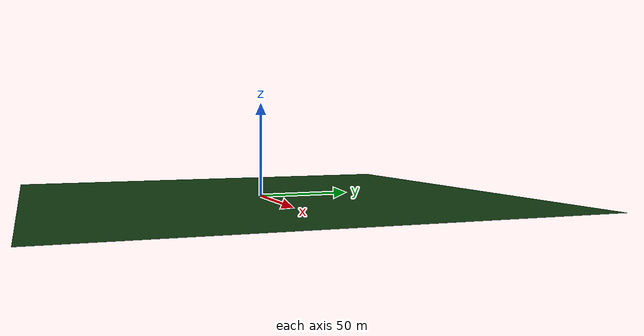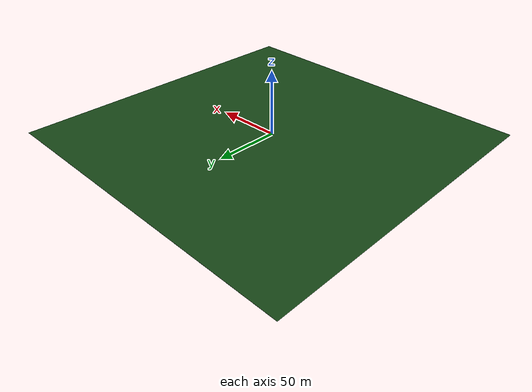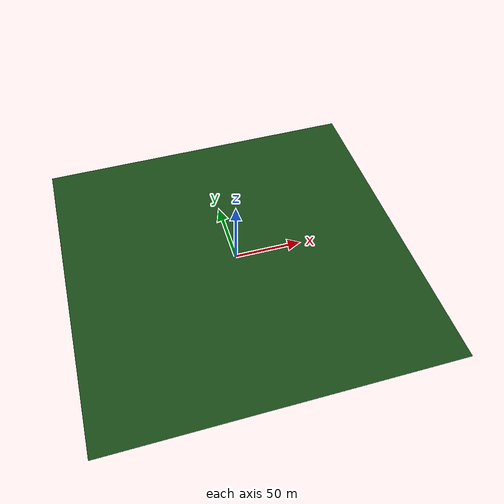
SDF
<?xml version='1.0'?>
<sdf version='1.7'>
  <model name='sloping_floor'>
    <link name='link'>
      <inertial>
        <mass>1514.9</mass>
        <inertia>
          <ixx>6.91743e+06</ixx>
          <ixy>0</ixy>
          <ixz>0</ixz>
          <iyy>3.85662e+06</iyy>
          <iyz>0</iyz>
          <izz>1.07741e+07</izz>
        </inertia>
        <pose>0 0 0 0 -0 0</pose>
      </inertial>
      <self_collide>0</self_collide>
      <enable_wind>0</enable_wind>
      <kinematic>0</kinematic>
      <pose>0 0 0 0 -0.019625 0</pose>
      <visual name='visual'>
        <geometry>
          <box>
            <size>250 250 0.037027</size>
          </box>
        </geometry>
        <material>
            <diffuse>0.1 0.3 0.1 1.0</diffuse>
            <ambient>0.1 0.3 0.1 1.0</ambient>
        </material>
        <pose>0 0 0 0 -0 0</pose>
        <transparency>0</transparency>
        <cast_shadows>1</cast_shadows>
      </visual>
      <collision name='collision'>
        <laser_retro>0</laser_retro>
        <max_contacts>10</max_contacts>
        <pose>0 0 0 0 -0 0</pose>
        <geometry>
          <box>
            <size>250 250 0.037027</size>
          </box>
        </geometry>
        <surface>
          <friction>
            <ode>
              <mu>1</mu>
              <mu2>1</mu2>
              <fdir1>0 0 0</fdir1>
              <slip1>0</slip1>
              <slip2>0</slip2>
            </ode>
            <torsional>
              <coefficient>1</coefficient>
              <patch_radius>0</patch_radius>
              <surface_radius>0</surface_radius>
              <use_patch_radius>1</use_patch_radius>
              <ode>
                <slip>0</slip>
              </ode>
            </torsional>
          </friction>
          <bounce>
            <restitution_coefficient>0</restitution_coefficient>
            <threshold>1e+06</threshold>
          </bounce>
          <contact>
            <collide_without_contact>0</collide_without_contact>
            <collide_without_contact_bitmask>1</collide_without_contact_bitmask>
            <collide_bitmask>1</collide_bitmask>
            <ode>
              <soft_cfm>0</soft_cfm>
              <soft_erp>0.2</soft_erp>
              <kp>1e+13</kp>
              <kd>1</kd>
              <max_vel>0.01</max_vel>
              <min_depth>0</min_depth>
            </ode>
            <bullet>
              <split_impulse>1</split_impulse>
              <split_impulse_penetration_threshold>-0.01</split_impulse_penetration_threshold>
              <soft_cfm>0</soft_cfm>
              <soft_erp>0.2</soft_erp>
              <kp>1e+13</kp>
              <kd>1</kd>
            </bullet>
          </contact>
        </surface>
      </collision>
    </link>
    <static>1</static>
    <allow_auto_disable>1</allow_auto_disable>
  </model>
</sdf>
